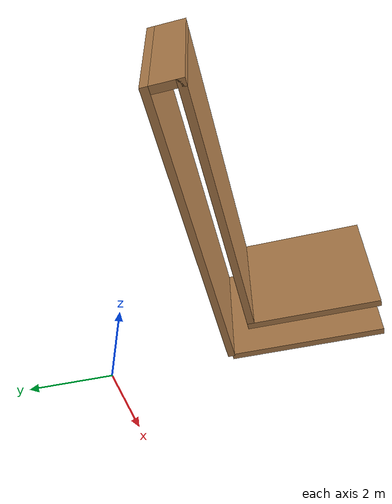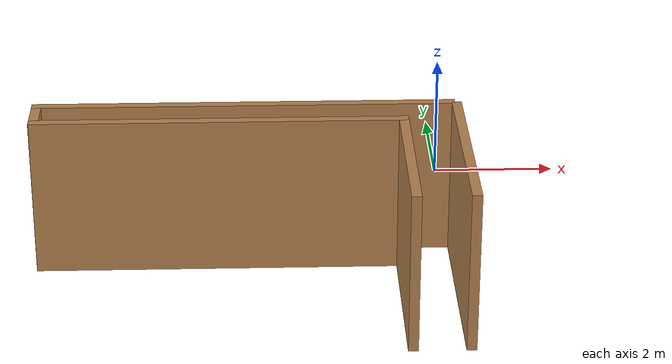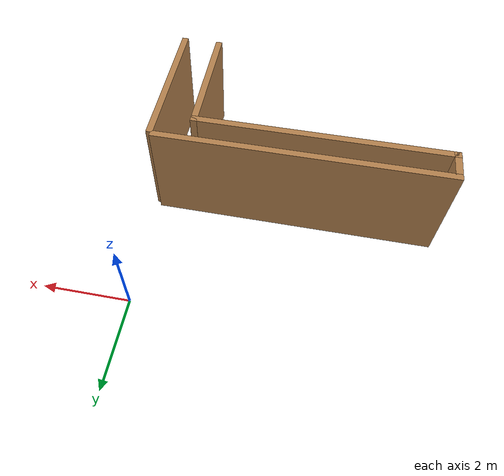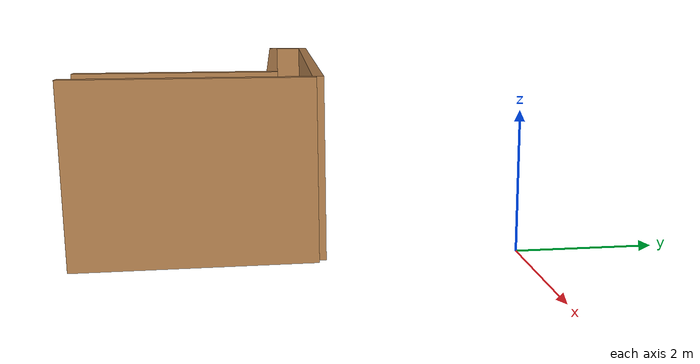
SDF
<?xml version='1.0'?>
<sdf version='1.7'>
  <model name='walls'>
    <pose>-3.175 -3.0075 0 0 -0 0</pose>
    <link name='Wall_0'>
      <collision name='Wall_0_Collision'>
        <geometry>
          <box>
            <size>6.5 0.15 2.5</size>
          </box>
        </geometry>
        <pose>0 0 1.25 0 -0 0</pose>
      </collision>
      <visual name='Wall_0_Visual'>
        <pose>0 0 1.25 0 -0 0</pose>
        <geometry>
          <box>
            <size>6.5 0.15 2.5</size>
          </box>
        </geometry>
        <material>
          <script>
            <uri>file://media/materials/scripts/gazebo.material</uri>
            <name>Gazebo/Wood</name>
          </script>
          <ambient>1 1 1 1</ambient>
        </material>
        <meta>
          <layer>0</layer>
        </meta>
      </visual>
      <pose>-0.05 0.2675 0 0 -0 3.14159</pose>
    </link>
    <link name='Wall_1'>
      <collision name='Wall_1_Collision'>
        <geometry>
          <box>
            <size>0.75 0.15 2.5</size>
          </box>
        </geometry>
        <pose>0 0 1.25 0 -0 0</pose>
      </collision>
      <visual name='Wall_1_Visual'>
        <pose>0 0 1.25 0 -0 0</pose>
        <geometry>
          <box>
            <size>0.75 0.15 2.5</size>
          </box>
        </geometry>
        <material>
          <script>
            <uri>file://media/materials/scripts/gazebo.material</uri>
            <name>Gazebo/Wood</name>
          </script>
          <ambient>1 1 1 1</ambient>
        </material>
        <meta>
          <layer>0</layer>
        </meta>
      </visual>
      <pose>-3.225 -0.0325 0 0 -0 -1.5708</pose>
    </link>
    <link name='Wall_2'>
      <collision name='Wall_2_Collision'>
        <geometry>
          <box>
            <size>5.75 0.15 2.5</size>
          </box>
        </geometry>
        <pose>0 0 1.25 0 -0 0</pose>
      </collision>
      <visual name='Wall_2_Visual'>
        <pose>0 0 1.25 0 -0 0</pose>
        <geometry>
          <box>
            <size>5.75 0.15 2.5</size>
          </box>
        </geometry>
        <material>
          <script>
            <uri>file://media/materials/scripts/gazebo.material</uri>
            <name>Gazebo/Wood</name>
          </script>
          <ambient>1 1 1 1</ambient>
        </material>
        <meta>
          <layer>0</layer>
        </meta>
      </visual>
      <pose>-0.425 -0.3325 0 0 -0 0</pose>
    </link>
    <link name='Wall_3'>
      <collision name='Wall_3_Collision'>
        <geometry>
          <box>
            <size>2.75 0.15 2.5</size>
          </box>
        </geometry>
        <pose>0 0 1.25 0 -0 0</pose>
      </collision>
      <visual name='Wall_3_Visual'>
        <pose>0 0 1.25 0 -0 0</pose>
        <geometry>
          <box>
            <size>2.75 0.15 2.5</size>
          </box>
        </geometry>
        <material>
          <script>
            <uri>file://media/materials/scripts/gazebo.material</uri>
            <name>Gazebo/Wood</name>
          </script>
          <ambient>1 1 1 1</ambient>
        </material>
        <meta>
          <layer>0</layer>
        </meta>
      </visual>
      <pose>2.375 -1.6325 0 0 -0 -1.5708</pose>
    </link>
    <link name='Wall_5'>
      <collision name='Wall_5_Collision'>
        <geometry>
          <box>
            <size>3.25 0.15 2.5</size>
          </box>
        </geometry>
        <pose>0 0 1.25 0 -0 0</pose>
      </collision>
      <visual name='Wall_5_Visual'>
        <pose>0 0 1.25 0 -0 0</pose>
        <geometry>
          <box>
            <size>3.25 0.15 2.5</size>
          </box>
        </geometry>
        <material>
          <script>
            <uri>file://media/materials/scripts/gazebo.material</uri>
            <name>Gazebo/Wood</name>
          </script>
          <ambient>1 1 1 1</ambient>
        </material>
        <meta>
          <layer>0</layer>
        </meta>
      </visual>
      <pose>3.225 -1.3825 0 0 -0 1.5708</pose>
    </link>
    <static>1</static>
  </model>
</sdf>
